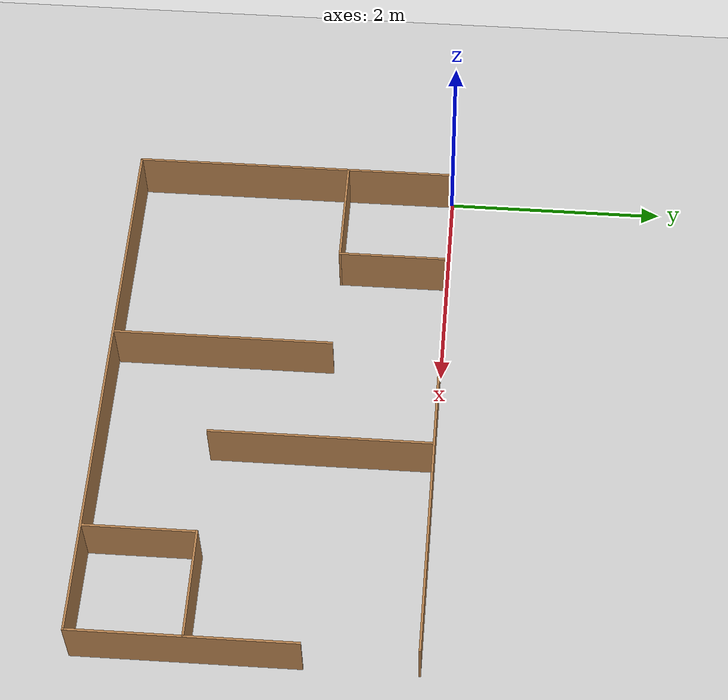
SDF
<sdf version="1.6">
 <world name="default">
  <light name="sun" type="directional">
   <pose>0 0 10 0 -0 0</pose>
   <diffuse>0.8 0.8 0.8 1</diffuse>
   <specular>0.2 0.2 0.2 1</specular>
   <attenuation>
    <range>1000</range>
    <constant>0.9</constant>
    <linear>0.01</linear>
    <quadratic>0.001</quadratic>
   </attenuation>
   <direction>-0.5 0.1 -0.9</direction>
  </light>
  <model name="ground_plane">
   <static>1</static>
   <link name="link">
    <collision name="collision">
     <geometry><plane><normal>0 0 1</normal><size>100 100</size></plane></geometry>
     <surface>
      <contact><collide_bitmask>65535</collide_bitmask></contact>
      <friction><ode><mu>100</mu><mu2>50</mu2></ode></friction>
     </surface>
    </collision>
    <visual name="visual">
     <cast_shadows>0</cast_shadows>
     <geometry><plane><normal>0 0 1</normal><size>100 100</size></plane></geometry>
     <material>
      <script><uri>file://media/materials/scripts/gazebo.material</uri><name>Gazebo/Grey</name></script>
     </material>
    </visual>
   </link>
  </model>
  <gravity>0 0 -9.8</gravity>
  <magnetic_field>6e-06 2.3e-05 -4.2e-05</magnetic_field>
  <atmosphere type="adiabatic"/>
  <physics name="default_physics" default="0" type="ode">
   <max_step_size>0.001</max_step_size>
   <real_time_factor>1</real_time_factor>
   <real_time_update_rate>1000</real_time_update_rate>
  </physics>
  <scene><ambient>0.4 0.4 0.4 1</ambient><background>0.7 0.7 0.7 1</background><shadows>1</shadows></scene>
  <audio><device>default</device></audio>
  <spherical_coordinates>
   <surface_model>EARTH_WGS84</surface_model>
   <latitude_deg>0</latitude_deg>
   <longitude_deg>0</longitude_deg>
   <elevation>0</elevation>
   <heading_deg>0</heading_deg>
  </spherical_coordinates>
  <model name="exp_03">
   <pose>2.50246 -1.50054 0 0 -0 0</pose>
   <link name="Wall_18">
    <collision name="Wall_18_Collision">
     <geometry><box><size>5 0.02 0.5</size></box></geometry>
     <pose>0 0 0.25 0 -0 0</pose>
    </collision>
    <visual name="Wall_18_Visual">
     <pose>0 0 0.25 0 -0 0</pose>
     <geometry><box><size>5 0.02 0.5</size></box></geometry>
     <material>
      <script><uri>file://media/materials/scripts/gazebo.material</uri><name>Gazebo/Wood</name></script>
      <ambient>1 1 1 1</ambient>
     </material>
     <meta><layer>0</layer></meta>
    </visual>
    <pose>-0 -1.49 0 0 -0 -2.8e-05</pose>
   </link>
   <link name="Wall_20">
    <collision name="Wall_20_Collision">
     <geometry><box><size>3 0.02 0.5</size></box></geometry>
     <pose>0 0 0.25 0 -0 0</pose>
    </collision>
    <visual name="Wall_20_Visual">
     <pose>0 0 0.25 0 -0 0</pose>
     <geometry><box><size>3 0.02 0.5</size></box></geometry>
     <material>
      <script><uri>file://media/materials/scripts/gazebo.material</uri><name>Gazebo/Wood</name></script>
      <ambient>1 1 1 1</ambient>
     </material>
     <meta><layer>0</layer></meta>
    </visual>
    <pose>-2.49019 7.1e-05 0 0 -0 1.5708</pose>
   </link>
   <link name="Wall_22">
    <collision name="Wall_22_Collision">
     <geometry><box><size>5 0.02 0.5</size></box></geometry>
     <pose>0 0 0.25 0 -0 0</pose>
    </collision>
    <visual name="Wall_22_Visual">
     <pose>0 0 0.25 0 -0 0</pose>
     <geometry><box><size>5 0.02 0.5</size></box></geometry>
     <material>
      <script><uri>file://media/materials/scripts/gazebo.material</uri><name>Gazebo/Wood</name></script>
      <ambient>1 1 1 1</ambient>
     </material>
     <meta><layer>0</layer></meta>
    </visual>
    <pose>-0.000194 1.49007 0 0 -0 0</pose>
   </link>
   <link name="Wall_24">
    <collision name="Wall_24_Collision">
     <geometry><box><size>2 0.02 0.5</size></box></geometry>
     <pose>0 0 0.25 0 -0 0</pose>
    </collision>
    <visual name="Wall_24_Visual">
     <pose>0 0 0.25 0 -0 0</pose>
     <geometry><box><size>2 0.02 0.5</size></box></geometry>
     <material>
      <script><uri>file://media/materials/scripts/gazebo.material</uri><name>Gazebo/Wood</name></script>
      <ambient>1 1 1 1</ambient>
     </material>
     <meta><layer>0</layer></meta>
    </visual>
    <pose>2.49019 -0.500071 0 0 -0 1.5708</pose>
   </link>
   <link name="Wall_26">
    <collision name="Wall_26_Collision">
     <geometry><box><size>1 0.02 0.5</size></box></geometry>
     <pose>0 0 0.25 0 -0 0</pose>
    </collision>
    <visual name="Wall_26_Visual">
     <pose>0 0 0.25 0 -0 0</pose>
     <geometry><box><size>1 0.02 0.5</size></box></geometry>
     <material>
      <script><uri>file://media/materials/scripts/gazebo.material</uri><name>Gazebo/Wood</name></script>
      <ambient>1 1 1 1</ambient>
     </material>
     <meta><layer>0</layer></meta>
    </visual>
    <pose>-1.50296 0.986674 0 0 -0 -1.5708</pose>
   </link>
   <link name="Wall_28">
    <collision name="Wall_28_Collision">
     <geometry><box><size>1 0.02 0.5</size></box></geometry>
     <pose>0 0 0.25 0 -0 0</pose>
    </collision>
    <visual name="Wall_28_Visual">
     <pose>0 0 0.25 0 -0 0</pose>
     <geometry><box><size>1 0.02 0.5</size></box></geometry>
     <material>
      <script><uri>file://media/materials/scripts/gazebo.material</uri><name>Gazebo/Wood</name></script>
      <ambient>1 1 1 1</ambient>
     </material>
     <meta><layer>0</layer></meta>
    </visual>
    <pose>-1.99228 0.497134 0 0 -0 3.14159</pose>
   </link>
   <link name="Wall_30">
    <collision name="Wall_30_Collision">
     <geometry><box><size>2 0.02 0.5</size></box></geometry>
     <pose>0 0 0.25 0 -0 0</pose>
    </collision>
    <visual name="Wall_30_Visual">
     <pose>0 0 0.25 0 -0 0</pose>
     <geometry><box><size>2 0.02 0.5</size></box></geometry>
     <material>
      <script><uri>file://media/materials/scripts/gazebo.material</uri><name>Gazebo/Wood</name></script>
      <ambient>1 1 1 1</ambient>
     </material>
     <meta><layer>0</layer></meta>
    </visual>
    <pose>-0.50256 -0.485708 0 0 -0 -1.5708</pose>
   </link>
   <link name="Wall_32">
    <collision name="Wall_32_Collision">
     <geometry><box><size>2 0.02 0.5</size></box></geometry>
     <pose>0 0 0.25 0 -0 0</pose>
    </collision>
    <visual name="Wall_32_Visual">
     <pose>0 0 0.25 0 -0 0</pose>
     <geometry><box><size>2 0.02 0.5</size></box></geometry>
     <material>
      <script><uri>file://media/materials/scripts/gazebo.material</uri><name>Gazebo/Wood</name></script>
      <ambient>1 1 1 1</ambient>
     </material>
     <meta><layer>0</layer></meta>
    </visual>
    <pose>0.49232 0.482089 0 0 -0 -1.5708</pose>
   </link>
   <link name="Wall_34">
    <collision name="Wall_34_Collision">
     <geometry><box><size>1 0.02 0.5</size></box></geometry>
     <pose>0 0 0.25 0 -0 0</pose>
    </collision>
    <visual name="Wall_34_Visual">
     <pose>0 0 0.25 0 -0 0</pose>
     <geometry><box><size>1 0.02 0.5</size></box></geometry>
     <material>
      <script><uri>file://media/materials/scripts/gazebo.material</uri><name>Gazebo/Wood</name></script>
      <ambient>1 1 1 1</ambient>
     </material>
     <meta><layer>0</layer></meta>
    </visual>
    <pose>1.99177 -0.484331 0 0 -0 3.14159</pose>
   </link>
   <link name="Wall_36">
    <collision name="Wall_36_Collision">
     <geometry><box><size>1 0.02 0.5</size></box></geometry>
     <pose>0 0 0.25 0 -0 0</pose>
    </collision>
    <visual name="Wall_36_Visual">
     <pose>0 0 0.25 0 -0 0</pose>
     <geometry><box><size>1 0.02 0.5</size></box></geometry>
     <material>
      <script><uri>file://media/materials/scripts/gazebo.material</uri><name>Gazebo/Wood</name></script>
      <ambient>1 1 1 1</ambient>
     </material>
     <meta><layer>0</layer></meta>
    </visual>
    <pose>1.50181 -0.988161 0 0 -0 -1.5708</pose>
   </link>
   <static>1</static>
  </model>
 </world>
</sdf>
